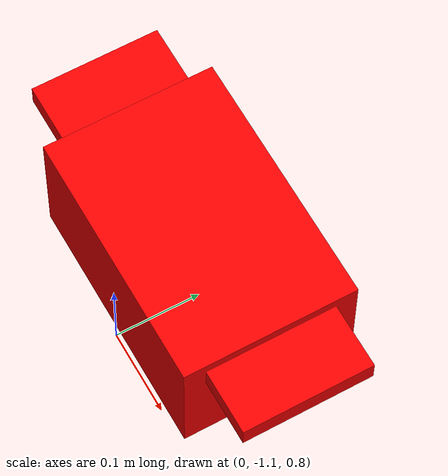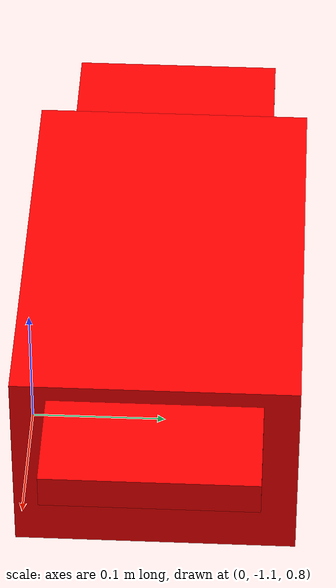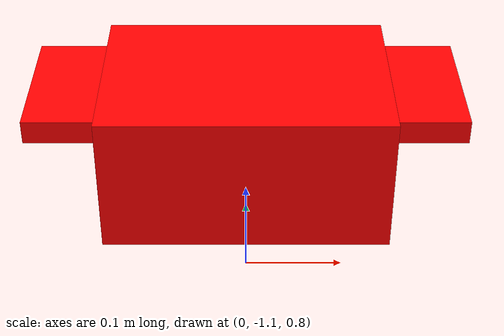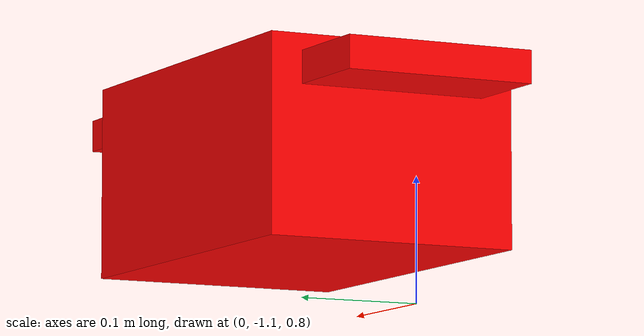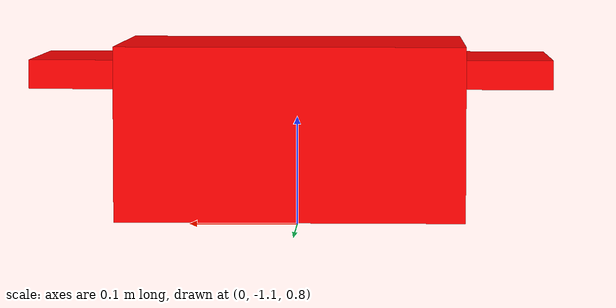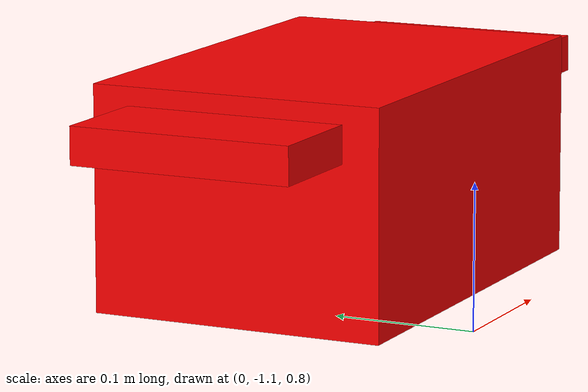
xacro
<?xml version="1.0"?>
<robot name="block">
  <link name="world"/>

  <link name="base_link">
    <!-- 主体视觉和碰撞 -->
    <visual>
      <geometry>
        <box size="0.3 0.2 0.15"/>
      </geometry>
      <origin xyz="0 0 0" rpy="0 0 0"/>
      <material name="red">
        <color rgba="1 0 0 1"/>
      </material>
    </visual>
    <collision>
      <geometry>
        <box size="0.3 0.2 0.15"/>
      </geometry>
      <origin xyz="0 0 0" rpy="0 0 0"/>
    </collision>

    <!-- 左耳 -->
    <visual>
      <geometry>
        <box size="0.1 0.15 0.025"/>
      </geometry>
      <origin xyz="-0.175 0.0 0.05" rpy="0 0 0"/>
      <material name="red"/>
    </visual>
    <collision>
      <geometry>
        <box size="0.1 0.15 0.025"/>
      </geometry>
      <origin xyz="-0.175 0.0 0.05" rpy="0 0 0"/>
    </collision>

    <!-- 右耳 -->
    <visual>
      <geometry>
        <box size="0.1 0.15 0.025"/>
      </geometry>
      <origin xyz="0.175 0.0 0.05" rpy="0 0 0"/>
      <material name="red"/>
    </visual>
    <collision>
      <geometry>
        <box size="0.1 0.15 0.025"/>
      </geometry>
      <origin xyz="0.175 0.0 0.05" rpy="0 0 0"/>
    </collision>

    <!-- 质量惯性（合并计算） -->
    <inertial>

      <mass value="0.01"/>
      <inertia ixx="0.00001" ixy="0" ixz="0" iyy="0.00001" iyz="0" izz="0.00001"/>

    </inertial>
  </link>

  <!-- Floating joint to make the block freely movable -->
  <joint name="floating" type="floating">
    <parent link="world"/>
    <child link="base_link"/>
    <origin xyz="0 -1.0 0.9" rpy="0 0 0"/>
  </joint>

  <!-- Gazebo物理属性配置 -->
  <gazebo reference="base_link">
    <material>Gazebo/Red</material>
    <mu1>0.8</mu1>
    <mu2>0.8</mu2>
    <kp>1000000.0</kp>
    <kd>100.0</kd>
    <minDepth>0.001</minDepth>
    <maxVel>1.0</maxVel>
    <maxContacts>20</maxContacts>
  </gazebo>
</robot>
